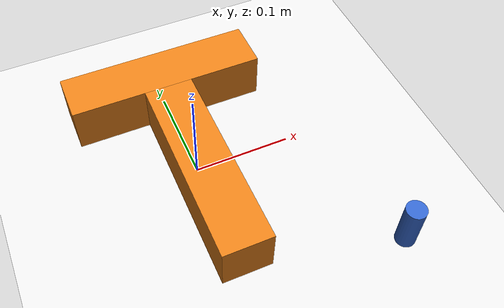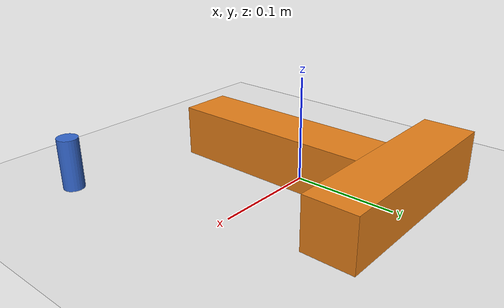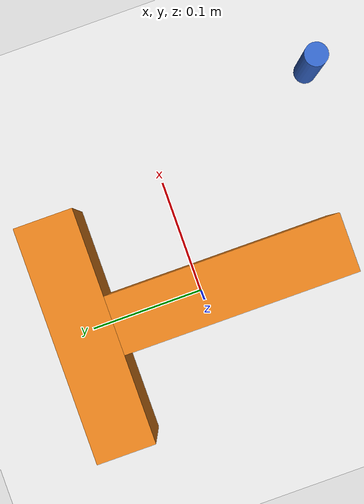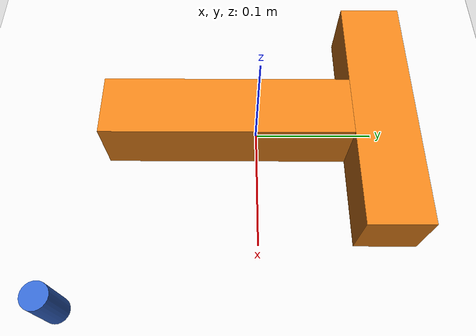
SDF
<?xml version="1.0"?>
<sdf version="1.7">
  <world name="pusht_env">

    <gravity>0 0 -9.81</gravity>

    <!-- Ground plane -->
    <model name="ground_plane">
      <static>true</static>
      <link name="ground">
        <collision name="ground_collision">
          <geometry>
            <plane>
              <normal>0 0 1</normal>
              <size>10 10</size>
            </plane>
          </geometry>
        </collision>
        <visual name="ground_visual">
          <geometry>
            <plane>
              <normal>0 0 1</normal>
              <size>10 10</size>
            </plane>
          </geometry>
          <material>
            <ambient>0.9 0.9 0.9 1.0</ambient>
            <diffuse>0.9 0.9 0.9 1.0</diffuse>
          </material>
        </visual>
      </link>
    </model>

    <!-- T-shaped block (inlined from t_block.sdf) -->
    <model name="t_block">
      <pose>0 0 0 0 0 0</pose>

      <link name="t_block">

        <inertial>
          <pose>0 0.0375 0.025 0 0 0</pose>
          <mass>0.60</mass>
          <inertia>
            <ixx>3.531e-3</ixx>
            <iyy>1.188e-3</iyy>
            <izz>4.469e-3</izz>
            <ixy>0</ixy>
            <ixz>0</ixz>
            <iyz>0</iyz>
          </inertia>
        </inertial>

        <!-- Top bar: 20 cm × 5 cm × 5 cm, centre at (0, +0.10, +0.025) -->
        <collision name="top_bar">
          <pose>0 0.10 0.025 0 0 0</pose>
          <geometry>
            <box><size>0.20 0.05 0.05</size></box>
          </geometry>
        </collision>
        <visual name="top_bar_visual">
          <pose>0 0.10 0.025 0 0 0</pose>
          <geometry>
            <box><size>0.20 0.05 0.05</size></box>
          </geometry>
          <material>
            <ambient>0.90 0.50 0.10 1.0</ambient>
            <diffuse>0.90 0.50 0.10 1.0</diffuse>
          </material>
        </visual>

        <!-- Stem: 5 cm × 20 cm × 5 cm, centre at (0, −0.025, +0.025) -->
        <collision name="stem">
          <pose>0 -0.025 0.025 0 0 0</pose>
          <geometry>
            <box><size>0.05 0.20 0.05</size></box>
          </geometry>
        </collision>
        <visual name="stem_visual">
          <pose>0 -0.025 0.025 0 0 0</pose>
          <geometry>
            <box><size>0.05 0.20 0.05</size></box>
          </geometry>
          <material>
            <ambient>0.90 0.50 0.10 1.0</ambient>
            <diffuse>0.90 0.50 0.10 1.0</diffuse>
          </material>
        </visual>

      </link>

    </model>

    <!-- Cylinder pusher (inlined from pusher.sdf) -->
    <!--
      Radius 1 cm, height 5 cm, mass 0.1 kg.
      Spawn z = 0.025 so the cylinder midplane aligns with the T-block faces.
    -->
    <model name="pusher">
      <pose>0.15 -0.15 0.025 0 0 0</pose>

      <link name="pusher_link">

        <inertial>
          <pose>0 0 0 0 0 0</pose>
          <mass>0.1</mass>
          <inertia>
            <ixx>2.333e-5</ixx>
            <iyy>2.333e-5</iyy>
            <izz>5.000e-6</izz>
            <ixy>0</ixy>
            <ixz>0</ixz>
            <iyz>0</iyz>
          </inertia>
        </inertial>

        <collision name="pusher_collision">
          <pose>0 0 0 0 0 0</pose>
          <geometry>
            <cylinder>
              <radius>0.01</radius>
              <length>0.05</length>
            </cylinder>
          </geometry>
        </collision>
        <visual name="pusher_visual">
          <pose>0 0 0 0 0 0</pose>
          <geometry>
            <cylinder>
              <radius>0.01</radius>
              <length>0.05</length>
            </cylinder>
          </geometry>
          <material>
            <ambient>0.20 0.40 0.80 1.0</ambient>
            <diffuse>0.20 0.40 0.80 1.0</diffuse>
          </material>
        </visual>

      </link>

    </model>

  </world>
</sdf>
